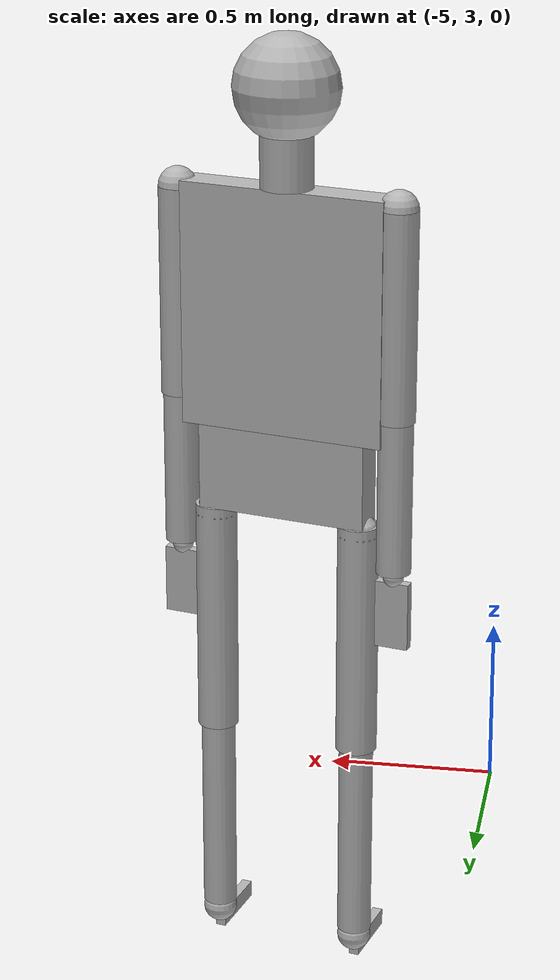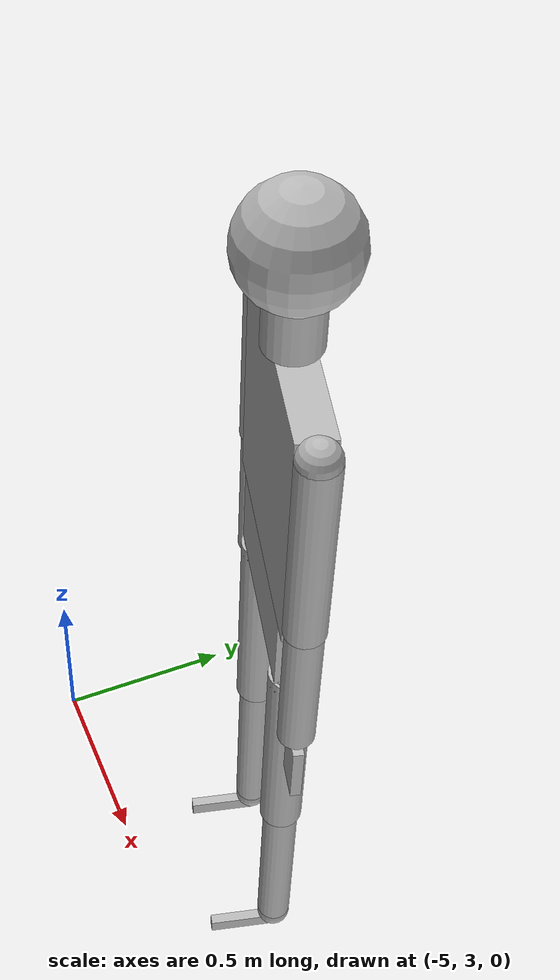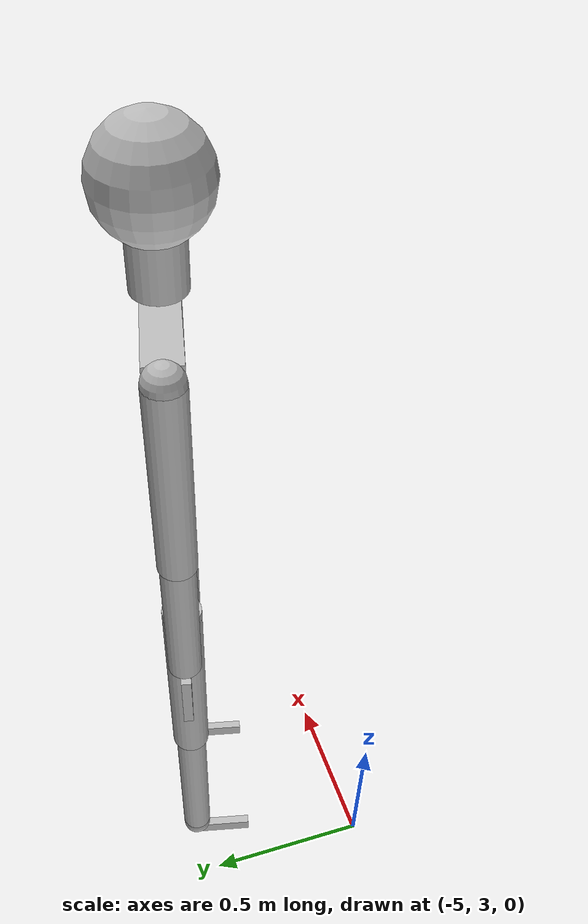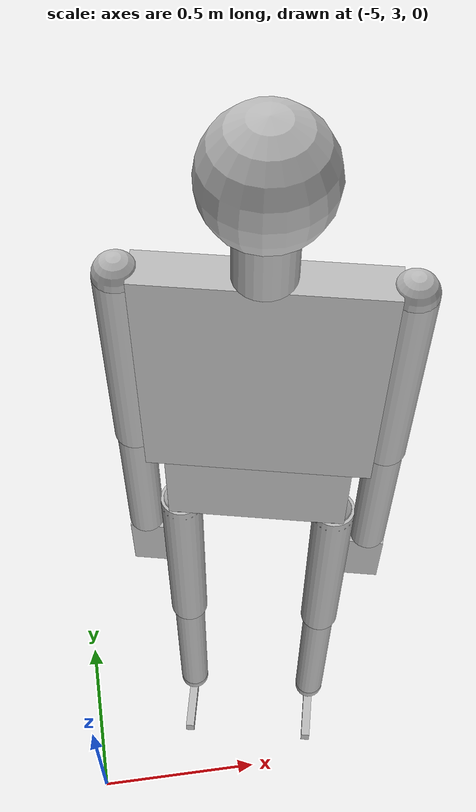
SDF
<sdf version="1.7">
 <world name="world_demo">
  <model name="ground_plane">
   <static>1</static>
   <link name="link">
    <collision name="collision">
     <geometry><plane><normal>0 0 1</normal><size>1 1</size></plane></geometry>
    </collision>
    <inertial>
     <mass>1</mass>
     <inertia><ixx>1</ixx><ixy>0</ixy><ixz>0</ixz><iyy>1</iyy><iyz>0</iyz><izz>1</izz></inertia>
    </inertial>
   </link>
  </model>
  <model name="ragdoll_0">
   <pose>-4.43933 3.44481 1.00722 0.00845 -0.002466 -1.79985</pose>
   <link name="hip">
    <inertial>
     <inertia><ixx>0.1</ixx><ixy>0</ixy><ixz>0</ixz><iyy>0.1</iyy><iyz>0</iyz><izz>0.1</izz></inertia>
     <mass>10</mass>
    </inertial>
    <collision name="hip_geom">
     <pose>0 0 0.125 0 -0 0</pose>
     <geometry><box><size>0.1 0.5 0.25</size></box></geometry>
     <surface>
      <friction><ode><mu>-1</mu><mu2>-1</mu2><fdir1>0 0 0</fdir1><slip1>0</slip1><slip2>0</slip2></ode></friction>
      <bounce><restitution_coefficient>0</restitution_coefficient><threshold>100000</threshold></bounce>
      <contact>
       <ode>
        <soft_cfm>0</soft_cfm>
        <soft_erp>0.2</soft_erp>
        <kp>1e+12</kp>
        <kd>1</kd>
        <max_vel>0</max_vel>
        <min_depth>0.001</min_depth>
       </ode>
      </contact>
     </surface>
    </collision>
    <visual name="hip_geom_visual">
     <pose>0 0 0.125 0 -0 0</pose>
     <geometry><box><size>0.1 0.5 0.25</size></box></geometry>
    </visual>
    <gravity>0</gravity>
   </link>
   <link name="l_thigh_pan">
    <pose>0 0.22 0 0 -0 0</pose>
    <inertial>
     <inertia><ixx>0.01</ixx><ixy>0</ixy><ixz>0</ixz><iyy>0.01</iyy><iyz>0</iyz><izz>0.01</izz></inertia>
     <mass>1</mass>
    </inertial>
    <collision name="l_thigh_pan_geom">
     <pose>0 0 -0.03 0 -0 0</pose>
     <geometry><sphere><radius>0.06</radius></sphere></geometry>
     <surface>
      <friction><ode><mu>-1</mu><mu2>-1</mu2><fdir1>0 0 0</fdir1><slip1>0</slip1><slip2>0</slip2></ode></friction>
      <bounce><restitution_coefficient>0</restitution_coefficient><threshold>100000</threshold></bounce>
      <contact>
       <ode>
        <soft_cfm>0</soft_cfm>
        <soft_erp>0.2</soft_erp>
        <kp>1e+12</kp>
        <kd>1</kd>
        <max_vel>0</max_vel>
        <min_depth>0.001</min_depth>
       </ode>
      </contact>
     </surface>
    </collision>
    <visual name="l_thigh_pan_geom_visual">
     <pose>0 0 -0.03 0 -0 0</pose>
     <geometry><sphere><radius>0.06</radius></sphere></geometry>
    </visual>
    <gravity>0</gravity>
   </link>
   <link name="l_thigh_lift">
    <pose>0 0.22 0 0 -0 0</pose>
    <inertial>
     <inertia><ixx>0.05</ixx><ixy>0</ixy><ixz>0</ixz><iyy>0.05</iyy><iyz>0</iyz><izz>0.05</izz></inertia>
     <mass>5</mass>
    </inertial>
    <collision name="l_thigh_lift_geom">
     <pose>0 0 -0.35 0 -0 0</pose>
     <geometry><cylinder><radius>0.06</radius><length>0.7</length></cylinder></geometry>
     <surface>
      <friction><ode><mu>-1</mu><mu2>-1</mu2><fdir1>0 0 0</fdir1><slip1>0</slip1><slip2>0</slip2></ode></friction>
      <bounce><restitution_coefficient>0</restitution_coefficient><threshold>100000</threshold></bounce>
      <contact>
       <ode>
        <soft_cfm>0</soft_cfm>
        <soft_erp>0.2</soft_erp>
        <kp>1e+12</kp>
        <kd>1</kd>
        <max_vel>0</max_vel>
        <min_depth>0.001</min_depth>
       </ode>
      </contact>
     </surface>
    </collision>
    <visual name="l_thigh_lift_geom_visual">
     <pose>0 0 -0.35 0 -0 0</pose>
     <geometry><cylinder><radius>0.06</radius><length>0.7</length></cylinder></geometry>
    </visual>
    <gravity>0</gravity>
   </link>
   <link name="l_calf">
    <pose>0 0.22 -0.7 0 -0 0</pose>
    <inertial>
     <inertia><ixx>0.02</ixx><ixy>0</ixy><ixz>0</ixz><iyy>0.02</iyy><iyz>0</iyz><izz>0.02</izz></inertia>
     <mass>2</mass>
    </inertial>
    <collision name="l_calf_geom">
     <pose>0 0 -0.3 0 -0 0</pose>
     <geometry><cylinder><radius>0.05</radius><length>0.6</length></cylinder></geometry>
     <surface>
      <friction><ode><mu>-1</mu><mu2>-1</mu2><fdir1>0 0 0</fdir1><slip1>0</slip1><slip2>0</slip2></ode></friction>
      <bounce><restitution_coefficient>0</restitution_coefficient><threshold>100000</threshold></bounce>
      <contact>
       <ode>
        <soft_cfm>0</soft_cfm>
        <soft_erp>0.2</soft_erp>
        <kp>1e+12</kp>
        <kd>1</kd>
        <max_vel>0</max_vel>
        <min_depth>0.001</min_depth>
       </ode>
      </contact>
     </surface>
    </collision>
    <visual name="l_calf_geom_visual">
     <pose>0 0 -0.3 0 -0 0</pose>
     <geometry><cylinder><radius>0.05</radius><length>0.6</length></cylinder></geometry>
    </visual>
    <gravity>0</gravity>
   </link>
   <link name="l_ankle">
    <pose>0 0.22 -1.325 0 -0 0</pose>
    <inertial>
     <inertia><ixx>0.01</ixx><ixy>0</ixy><ixz>0</ixz><iyy>0.01</iyy><iyz>0</iyz><izz>0.01</izz></inertia>
     <mass>1</mass>
    </inertial>
    <collision name="l_ankle_geom">
     <geometry><sphere><radius>0.05</radius></sphere></geometry>
     <surface>
      <friction><ode><mu>-1</mu><mu2>-1</mu2><fdir1>0 0 0</fdir1><slip1>0</slip1><slip2>0</slip2></ode></friction>
      <bounce><restitution_coefficient>0</restitution_coefficient><threshold>100000</threshold></bounce>
      <contact>
       <ode>
        <soft_cfm>0</soft_cfm>
        <soft_erp>0.2</soft_erp>
        <kp>1e+12</kp>
        <kd>1</kd>
        <max_vel>0</max_vel>
        <min_depth>0.001</min_depth>
       </ode>
      </contact>
     </surface>
    </collision>
    <visual name="l_ankle_geom_visual"><geometry><sphere><radius>0.05</radius></sphere></geometry></visual>
    <gravity>0</gravity>
   </link>
   <link name="l_foot">
    <pose>0 0.22 -1.35 0 -0 0</pose>
    <inertial>
     <pose>0.1 0 0 0 -0 0</pose>
     <inertia><ixx>0.01</ixx><ixy>0</ixy><ixz>0</ixz><iyy>0.01</iyy><iyz>0</iyz><izz>0.01</izz></inertia>
     <mass>1</mass>
    </inertial>
    <collision name="l_foot_geom">
     <pose>0.1 0 -0.025 0 -0 0</pose>
     <geometry><box><size>0.2 0.03 0.05</size></box></geometry>
     <surface>
      <friction><ode><mu>-1</mu><mu2>-1</mu2><fdir1>0 0 0</fdir1><slip1>0</slip1><slip2>0</slip2></ode></friction>
      <bounce><restitution_coefficient>0</restitution_coefficient><threshold>100000</threshold></bounce>
      <contact>
       <ode>
        <soft_cfm>0</soft_cfm>
        <soft_erp>0.2</soft_erp>
        <kp>1e+12</kp>
        <kd>1</kd>
        <max_vel>0</max_vel>
        <min_depth>0.001</min_depth>
       </ode>
      </contact>
     </surface>
    </collision>
    <visual name="l_foot_geom_visual">
     <pose>0.1 0 -0.025 0 -0 0</pose>
     <geometry><box><size>0.2 0.03 0.05</size></box></geometry>
    </visual>
   </link>
   <link name="r_thigh_pan">
    <pose>0 -0.22 0 0 -0 0</pose>
    <inertial>
     <inertia><ixx>0.01</ixx><ixy>0</ixy><ixz>0</ixz><iyy>0.01</iyy><iyz>0</iyz><izz>0.01</izz></inertia>
     <mass>1</mass>
    </inertial>
    <collision name="r_thigh_pan_geom">
     <pose>0 0 -0.03 0 -0 0</pose>
     <geometry><sphere><radius>0.06</radius></sphere></geometry>
     <surface>
      <friction><ode><mu>-1</mu><mu2>-1</mu2><fdir1>0 0 0</fdir1><slip1>0</slip1><slip2>0</slip2></ode></friction>
      <bounce><restitution_coefficient>0</restitution_coefficient><threshold>100000</threshold></bounce>
      <contact>
       <ode>
        <soft_cfm>0</soft_cfm>
        <soft_erp>0.2</soft_erp>
        <kp>1e+12</kp>
        <kd>1</kd>
        <max_vel>0</max_vel>
        <min_depth>0.001</min_depth>
       </ode>
      </contact>
     </surface>
    </collision>
    <visual name="r_thigh_pan_geom_visual">
     <pose>0 0 -0.03 0 -0 0</pose>
     <geometry><sphere><radius>0.06</radius></sphere></geometry>
    </visual>
    <gravity>0</gravity>
   </link>
   <link name="r_thigh_lift">
    <pose>0 -0.22 0 0 -0 0</pose>
    <inertial>
     <inertia><ixx>0.05</ixx><ixy>0</ixy><ixz>0</ixz><iyy>0.05</iyy><iyz>0</iyz><izz>0.05</izz></inertia>
     <mass>5</mass>
    </inertial>
    <collision name="r_thigh_lift_geom">
     <pose>0 0 -0.35 0 -0 0</pose>
     <geometry><cylinder><radius>0.06</radius><length>0.7</length></cylinder></geometry>
     <surface>
      <friction><ode><mu>-1</mu><mu2>-1</mu2><fdir1>0 0 0</fdir1><slip1>0</slip1><slip2>0</slip2></ode></friction>
      <bounce><restitution_coefficient>0</restitution_coefficient><threshold>100000</threshold></bounce>
      <contact>
       <ode>
        <soft_cfm>0</soft_cfm>
        <soft_erp>0.2</soft_erp>
        <kp>1e+12</kp>
        <kd>1</kd>
        <max_vel>0</max_vel>
        <min_depth>0.001</min_depth>
       </ode>
      </contact>
     </surface>
    </collision>
    <visual name="r_thigh_lift_geom_visual">
     <pose>0 0 -0.35 0 -0 0</pose>
     <geometry><cylinder><radius>0.06</radius><length>0.7</length></cylinder></geometry>
    </visual>
    <gravity>0</gravity>
   </link>
   <link name="r_calf">
    <pose>0 -0.22 -0.7 0 -0 0</pose>
    <inertial>
     <inertia><ixx>0.02</ixx><ixy>0</ixy><ixz>0</ixz><iyy>0.02</iyy><iyz>0</iyz><izz>0.02</izz></inertia>
     <mass>2</mass>
    </inertial>
    <collision name="r_calf_geom">
     <pose>0 0 -0.3 0 -0 0</pose>
     <geometry><cylinder><radius>0.05</radius><length>0.6</length></cylinder></geometry>
     <surface>
      <friction><ode><mu>-1</mu><mu2>-1</mu2><fdir1>0 0 0</fdir1><slip1>0</slip1><slip2>0</slip2></ode></friction>
      <bounce><restitution_coefficient>0</restitution_coefficient><threshold>100000</threshold></bounce>
      <contact>
       <ode>
        <soft_cfm>0</soft_cfm>
        <soft_erp>0.2</soft_erp>
        <kp>1e+12</kp>
        <kd>1</kd>
        <max_vel>0</max_vel>
        <min_depth>0.001</min_depth>
       </ode>
      </contact>
     </surface>
    </collision>
    <visual name="r_calf_geom_visual">
     <pose>0 0 -0.3 0 -0 0</pose>
     <geometry><cylinder><radius>0.05</radius><length>0.6</length></cylinder></geometry>
    </visual>
    <gravity>0</gravity>
   </link>
   <link name="r_ankle">
    <pose>0 -0.22 -1.325 0 -0 0</pose>
    <inertial>
     <inertia><ixx>0.01</ixx><ixy>0</ixy><ixz>0</ixz><iyy>0.01</iyy><iyz>0</iyz><izz>0.01</izz></inertia>
     <mass>1</mass>
    </inertial>
    <collision name="r_ankle_geom">
     <geometry><sphere><radius>0.05</radius></sphere></geometry>
     <surface>
      <friction><ode><mu>-1</mu><mu2>-1</mu2><fdir1>0 0 0</fdir1><slip1>0</slip1><slip2>0</slip2></ode></friction>
      <bounce><restitution_coefficient>0</restitution_coefficient><threshold>100000</threshold></bounce>
      <contact>
       <ode>
        <soft_cfm>0</soft_cfm>
        <soft_erp>0.2</soft_erp>
        <kp>1e+12</kp>
        <kd>1</kd>
        <max_vel>0</max_vel>
        <min_depth>0.001</min_depth>
       </ode>
      </contact>
     </surface>
    </collision>
    <visual name="r_ankle_geom_visual"><geometry><sphere><radius>0.05</radius></sphere></geometry></visual>
    <gravity>0</gravity>
   </link>
   <link name="r_foot">
    <pose>0 -0.22 -1.35 0 -0 0</pose>
    <inertial>
     <pose>0.1 0 0 0 -0 0</pose>
     <inertia><ixx>0.01</ixx><ixy>0</ixy><ixz>0</ixz><iyy>0.01</iyy><iyz>0</iyz><izz>0.01</izz></inertia>
     <mass>1</mass>
    </inertial>
    <collision name="r_foot_geom">
     <pose>0.1 0 -0.025 0 -0 0</pose>
     <geometry><box><size>0.2 0.03 0.05</size></box></geometry>
     <surface>
      <friction><ode><mu>-1</mu><mu2>-1</mu2><fdir1>0 0 0</fdir1><slip1>0</slip1><slip2>0</slip2></ode></friction>
      <bounce><restitution_coefficient>0</restitution_coefficient><threshold>100000</threshold></bounce>
      <contact>
       <ode>
        <soft_cfm>0</soft_cfm>
        <soft_erp>0.2</soft_erp>
        <kp>1e+12</kp>
        <kd>1</kd>
        <max_vel>0</max_vel>
        <min_depth>0.001</min_depth>
       </ode>
      </contact>
     </surface>
    </collision>
    <visual name="r_foot_geom_visual">
     <pose>0.1 0 -0.025 0 -0 0</pose>
     <geometry><box><size>0.2 0.03 0.05</size></box></geometry>
    </visual>
   </link>
   <link name="torso">
    <pose>0 0 0.25 0 -0 0</pose>
    <inertial>
     <inertia><ixx>0.3</ixx><ixy>0</ixy><ixz>0</ixz><iyy>0.3</iyy><iyz>0</iyz><izz>0.3</izz></inertia>
     <mass>30</mass>
    </inertial>
    <collision name="torso_geom">
     <pose>0 0 0.35 0 -0 0</pose>
     <geometry><box><size>0.1 0.6 0.7</size></box></geometry>
     <surface>
      <friction><ode><mu>-1</mu><mu2>-1</mu2><fdir1>0 0 0</fdir1><slip1>0</slip1><slip2>0</slip2></ode></friction>
      <bounce><restitution_coefficient>0</restitution_coefficient><threshold>100000</threshold></bounce>
      <contact>
       <ode>
        <soft_cfm>0</soft_cfm>
        <soft_erp>0.2</soft_erp>
        <kp>1e+12</kp>
        <kd>1</kd>
        <max_vel>0</max_vel>
        <min_depth>0.001</min_depth>
       </ode>
      </contact>
     </surface>
    </collision>
    <visual name="torso_geom_visual">
     <pose>0 0 0.35 0 -0 0</pose>
     <geometry><box><size>0.1 0.6 0.7</size></box></geometry>
    </visual>
    <gravity>0</gravity>
   </link>
   <link name="l_shoulder">
    <pose>0 0.3275 0.9225 0 -0 0</pose>
    <inertial>
     <inertia><ixx>0.01</ixx><ixy>0</ixy><ixz>0</ixz><iyy>0.01</iyy><iyz>0</iyz><izz>0.01</izz></inertia>
     <mass>1</mass>
    </inertial>
    <collision name="l_shoulder_geom">
     <geometry><sphere><radius>0.055</radius></sphere></geometry>
     <surface>
      <friction><ode><mu>-1</mu><mu2>-1</mu2><fdir1>0 0 0</fdir1><slip1>0</slip1><slip2>0</slip2></ode></friction>
      <bounce><restitution_coefficient>0</restitution_coefficient><threshold>100000</threshold></bounce>
      <contact>
       <ode>
        <soft_cfm>0</soft_cfm>
        <soft_erp>0.2</soft_erp>
        <kp>1e+12</kp>
        <kd>1</kd>
        <max_vel>0</max_vel>
        <min_depth>0.001</min_depth>
       </ode>
      </contact>
     </surface>
    </collision>
    <visual name="l_shoulder_geom_visual"><geometry><sphere><radius>0.055</radius></sphere></geometry></visual>
    <gravity>0</gravity>
   </link>
   <link name="l_upper_arm">
    <pose>0 0.3275 0.9225 0 -0 0</pose>
    <inertial>
     <inertia><ixx>0.02</ixx><ixy>0</ixy><ixz>0</ixz><iyy>0.02</iyy><iyz>0</iyz><izz>0.02</izz></inertia>
     <mass>2</mass>
    </inertial>
    <collision name="l_upper_arm_geom">
     <pose>0 0 -0.3 0 -0 0</pose>
     <geometry><cylinder><radius>0.055</radius><length>0.6</length></cylinder></geometry>
     <surface>
      <friction><ode><mu>-1</mu><mu2>-1</mu2><fdir1>0 0 0</fdir1><slip1>0</slip1><slip2>0</slip2></ode></friction>
      <bounce><restitution_coefficient>0</restitution_coefficient><threshold>100000</threshold></bounce>
      <contact>
       <ode>
        <soft_cfm>0</soft_cfm>
        <soft_erp>0.2</soft_erp>
        <kp>1e+12</kp>
        <kd>1</kd>
        <max_vel>0</max_vel>
        <min_depth>0.001</min_depth>
       </ode>
      </contact>
     </surface>
    </collision>
    <visual name="l_upper_arm_geom_visual">
     <pose>0 0 -0.3 0 -0 0</pose>
     <geometry><cylinder><radius>0.055</radius><length>0.6</length></cylinder></geometry>
    </visual>
    <gravity>0</gravity>
   </link>
   <link name="l_forearm">
    <pose>0 0.3275 0.3225 0 -0 0</pose>
    <inertial>
     <inertia><ixx>0.01</ixx><ixy>0</ixy><ixz>0</ixz><iyy>0.01</iyy><iyz>0</iyz><izz>0.01</izz></inertia>
     <mass>1</mass>
    </inertial>
    <collision name="l_forearm_geom">
     <pose>0 0 -0.225 0 -0 0</pose>
     <geometry><cylinder><radius>0.05</radius><length>0.45</length></cylinder></geometry>
     <surface>
      <friction><ode><mu>-1</mu><mu2>-1</mu2><fdir1>0 0 0</fdir1><slip1>0</slip1><slip2>0</slip2></ode></friction>
      <bounce><restitution_coefficient>0</restitution_coefficient><threshold>100000</threshold></bounce>
      <contact>
       <ode>
        <soft_cfm>0</soft_cfm>
        <soft_erp>0.2</soft_erp>
        <kp>1e+12</kp>
        <kd>1</kd>
        <max_vel>0</max_vel>
        <min_depth>0.001</min_depth>
       </ode>
      </contact>
     </surface>
    </collision>
    <visual name="l_forearm_geom_visual">
     <pose>0 0 -0.225 0 -0 0</pose>
     <geometry><cylinder><radius>0.05</radius><length>0.45</length></cylinder></geometry>
    </visual>
    <gravity>0</gravity>
   </link>
   <link name="l_wrist">
    <pose>0 0.3275 -0.1425 0 -0 0</pose>
    <inertial>
     <inertia><ixx>0.01</ixx><ixy>0</ixy><ixz>0</ixz><iyy>0.01</iyy><iyz>0</iyz><izz>0.01</izz></inertia>
     <mass>1</mass>
    </inertial>
    <collision name="l_wrist_geom">
     <geometry><sphere><radius>0.03</radius></sphere></geometry>
     <surface>
      <friction><ode><mu>-1</mu><mu2>-1</mu2><fdir1>0 0 0</fdir1><slip1>0</slip1><slip2>0</slip2></ode></friction>
      <bounce><restitution_coefficient>0</restitution_coefficient><threshold>100000</threshold></bounce>
      <contact>
       <ode>
        <soft_cfm>0</soft_cfm>
        <soft_erp>0.2</soft_erp>
        <kp>1e+12</kp>
        <kd>1</kd>
        <max_vel>0</max_vel>
        <min_depth>0.001</min_depth>
       </ode>
      </contact>
     </surface>
    </collision>
    <visual name="l_wrist_geom_visual"><geometry><sphere><radius>0.03</radius></sphere></geometry></visual>
    <gravity>0</gravity>
   </link>
   <link name="l_hand">
    <pose>0 0.3275 -0.1575 0 -0 0</pose>
    <inertial>
     <inertia><ixx>0.01</ixx><ixy>0</ixy><ixz>0</ixz><iyy>0.01</iyy><iyz>0</iyz><izz>0.01</izz></inertia>
     <mass>1</mass>
    </inertial>
    <collision name="l_hand_geom">
     <pose>0 0 -0.1 0 -0 0</pose>
     <geometry><box><size>0.03 0.1 0.2</size></box></geometry>
     <surface>
      <friction><ode><mu>-1</mu><mu2>-1</mu2><fdir1>0 0 0</fdir1><slip1>0</slip1><slip2>0</slip2></ode></friction>
      <bounce><restitution_coefficient>0</restitution_coefficient><threshold>100000</threshold></bounce>
      <contact>
       <ode>
        <soft_cfm>0</soft_cfm>
        <soft_erp>0.2</soft_erp>
        <kp>1e+12</kp>
        <kd>1</kd>
        <max_vel>0</max_vel>
        <min_depth>0.001</min_depth>
       </ode>
      </contact>
     </surface>
    </collision>
    <visual name="l_hand_geom_visual">
     <pose>0 0 -0.1 0 -0 0</pose>
     <geometry><box><size>0.03 0.1 0.2</size></box></geometry>
    </visual>
    <gravity>0</gravity>
   </link>
   <link name="neck">
    <pose>0 0 0.95 0 -0 0</pose>
    <inertial>
     <inertia><ixx>0.01</ixx><ixy>0</ixy><ixz>0</ixz><iyy>0.01</iyy><iyz>0</iyz><izz>0.01</izz></inertia>
     <mass>1</mass>
    </inertial>
    <collision name="neck_geom">
     <pose>0 0 0.1 0 -0 0</pose>
     <geometry><cylinder><radius>0.075</radius><length>0.2</length></cylinder></geometry>
     <surface>
      <friction><ode><mu>-1</mu><mu2>-1</mu2><fdir1>0 0 0</fdir1><slip1>0</slip1><slip2>0</slip2></ode></friction>
      <bounce><restitution_coefficient>0</restitution_coefficient><threshold>100000</threshold></bounce>
      <contact>
       <ode>
        <soft_cfm>0</soft_cfm>
        <soft_erp>0.2</soft_erp>
        <kp>1e+12</kp>
        <kd>1</kd>
        <max_vel>0</max_vel>
        <min_depth>0.001</min_depth>
       </ode>
      </contact>
     </surface>
    </collision>
    <visual name="neck_geom_visual">
     <pose>0 0 0.1 0 -0 0</pose>
     <geometry><cylinder><radius>0.075</radius><length>0.2</length></cylinder></geometry>
    </visual>
    <gravity>0</gravity>
   </link>
   <link name="head">
    <pose>0 0 1.225 0 -0 0</pose>
    <inertial>
     <inertia><ixx>0.1</ixx><ixy>0</ixy><ixz>0</ixz><iyy>0.1</iyy><iyz>0</iyz><izz>0.1</izz></inertia>
     <mass>10</mass>
    </inertial>
    <collision name="head_geom">
     <geometry><sphere><radius>0.15</radius></sphere></geometry>
     <surface>
      <friction><ode><mu>-1</mu><mu2>-1</mu2><fdir1>0 0 0</fdir1><slip1>0</slip1><slip2>0</slip2></ode></friction>
      <bounce><restitution_coefficient>0</restitution_coefficient><threshold>100000</threshold></bounce>
      <contact>
       <ode>
        <soft_cfm>0</soft_cfm>
        <soft_erp>0.2</soft_erp>
        <kp>1e+12</kp>
        <kd>1</kd>
        <max_vel>0</max_vel>
        <min_depth>0.001</min_depth>
       </ode>
      </contact>
     </surface>
    </collision>
    <visual name="head_geom_visual"><geometry><sphere><radius>0.15</radius></sphere></geometry></visual>
    <gravity>0</gravity>
   </link>
   <link name="r_shoulder">
    <pose>0 -0.3275 0.9225 0 -0 0</pose>
    <inertial>
     <inertia><ixx>0.01</ixx><ixy>0</ixy><ixz>0</ixz><iyy>0.01</iyy><iyz>0</iyz><izz>0.01</izz></inertia>
     <mass>1</mass>
    </inertial>
    <collision name="r_shoulder_geom">
     <geometry><sphere><radius>0.055</radius></sphere></geometry>
     <surface>
      <friction><ode><mu>-1</mu><mu2>-1</mu2><fdir1>0 0 0</fdir1><slip1>0</slip1><slip2>0</slip2></ode></friction>
      <bounce><restitution_coefficient>0</restitution_coefficient><threshold>100000</threshold></bounce>
      <contact>
       <ode>
        <soft_cfm>0</soft_cfm>
        <soft_erp>0.2</soft_erp>
        <kp>1e+12</kp>
        <kd>1</kd>
        <max_vel>0</max_vel>
        <min_depth>0.001</min_depth>
       </ode>
      </contact>
     </surface>
    </collision>
    <visual name="r_shoulder_geom_visual"><geometry><sphere><radius>0.055</radius></sphere></geometry></visual>
    <gravity>0</gravity>
   </link>
   <link name="r_upper_arm">
    <pose>0 -0.3275 0.9225 0 -0 0</pose>
    <inertial>
     <inertia><ixx>0.02</ixx><ixy>0</ixy><ixz>0</ixz><iyy>0.02</iyy><iyz>0</iyz><izz>0.02</izz></inertia>
     <mass>2</mass>
    </inertial>
    <collision name="r_upper_arm_geom">
     <pose>0 0 -0.3 0 -0 0</pose>
     <geometry><cylinder><radius>0.055</radius><length>0.6</length></cylinder></geometry>
     <surface>
      <friction><ode><mu>-1</mu><mu2>-1</mu2><fdir1>0 0 0</fdir1><slip1>0</slip1><slip2>0</slip2></ode></friction>
      <bounce><restitution_coefficient>0</restitution_coefficient><threshold>100000</threshold></bounce>
      <contact>
       <ode>
        <soft_cfm>0</soft_cfm>
        <soft_erp>0.2</soft_erp>
        <kp>1e+12</kp>
        <kd>1</kd>
        <max_vel>0</max_vel>
        <min_depth>0.001</min_depth>
       </ode>
      </contact>
     </surface>
    </collision>
    <visual name="r_upper_arm_geom_visual">
     <pose>0 0 -0.3 0 -0 0</pose>
     <geometry><cylinder><radius>0.055</radius><length>0.6</length></cylinder></geometry>
    </visual>
    <gravity>0</gravity>
   </link>
   <link name="r_forearm">
    <pose>0 -0.3275 0.3225 0 -0 0</pose>
    <inertial>
     <inertia><ixx>0.01</ixx><ixy>0</ixy><ixz>0</ixz><iyy>0.01</iyy><iyz>0</iyz><izz>0.01</izz></inertia>
     <mass>1</mass>
    </inertial>
    <collision name="r_forearm_geom">
     <pose>0 0 -0.225 0 -0 0</pose>
     <geometry><cylinder><radius>0.05</radius><length>0.45</length></cylinder></geometry>
     <surface>
      <friction><ode><mu>-1</mu><mu2>-1</mu2><fdir1>0 0 0</fdir1><slip1>0</slip1><slip2>0</slip2></ode></friction>
      <bounce><restitution_coefficient>0</restitution_coefficient><threshold>100000</threshold></bounce>
      <contact>
       <ode>
        <soft_cfm>0</soft_cfm>
        <soft_erp>0.2</soft_erp>
        <kp>1e+12</kp>
        <kd>1</kd>
        <max_vel>0</max_vel>
        <min_depth>0.001</min_depth>
       </ode>
      </contact>
     </surface>
    </collision>
    <visual name="r_forearm_geom_visual">
     <pose>0 0 -0.225 0 -0 0</pose>
     <geometry><cylinder><radius>0.05</radius><length>0.45</length></cylinder></geometry>
    </visual>
    <gravity>0</gravity>
   </link>
   <link name="r_wrist">
    <pose>0 -0.3275 -0.1425 0 -0 0</pose>
    <inertial>
     <inertia><ixx>0.01</ixx><ixy>0</ixy><ixz>0</ixz><iyy>0.01</iyy><iyz>0</iyz><izz>0.01</izz></inertia>
     <mass>1</mass>
    </inertial>
    <collision name="r_wrist_geom">
     <geometry><sphere><radius>0.03</radius></sphere></geometry>
     <surface>
      <friction><ode><mu>-1</mu><mu2>-1</mu2><fdir1>0 0 0</fdir1><slip1>0</slip1><slip2>0</slip2></ode></friction>
      <bounce><restitution_coefficient>0</restitution_coefficient><threshold>100000</threshold></bounce>
      <contact>
       <ode>
        <soft_cfm>0</soft_cfm>
        <soft_erp>0.2</soft_erp>
        <kp>1e+12</kp>
        <kd>1</kd>
        <max_vel>0</max_vel>
        <min_depth>0.001</min_depth>
       </ode>
      </contact>
     </surface>
    </collision>
    <visual name="r_wrist_geom_visual"><geometry><sphere><radius>0.03</radius></sphere></geometry></visual>
    <gravity>0</gravity>
   </link>
   <link name="r_hand">
    <pose>0 -0.3275 -0.1575 0 -0 0</pose>
    <inertial>
     <inertia><ixx>0.01</ixx><ixy>0</ixy><ixz>0</ixz><iyy>0.01</iyy><iyz>0</iyz><izz>0.01</izz></inertia>
     <mass>1</mass>
    </inertial>
    <collision name="r_hand_geom">
     <pose>0 0 -0.1 0 -0 0</pose>
     <geometry><box><size>0.03 0.1 0.2</size></box></geometry>
     <surface>
      <friction><ode><mu>-1</mu><mu2>-1</mu2><fdir1>0 0 0</fdir1><slip1>0</slip1><slip2>0</slip2></ode></friction>
      <bounce><restitution_coefficient>0</restitution_coefficient><threshold>100000</threshold></bounce>
      <contact>
       <ode>
        <soft_cfm>0</soft_cfm>
        <soft_erp>0.2</soft_erp>
        <kp>1e+12</kp>
        <kd>1</kd>
        <max_vel>0</max_vel>
        <min_depth>0.001</min_depth>
       </ode>
      </contact>
     </surface>
    </collision>
    <visual name="r_hand_geom_visual">
     <pose>0 0 -0.1 0 -0 0</pose>
     <geometry><box><size>0.03 0.1 0.2</size></box></geometry>
    </visual>
    <gravity>0</gravity>
   </link>
   <joint name="l_thigh_pan_joint" type="revolute">
    <parent>hip</parent>
    <child>l_thigh_pan</child>
    <axis>
     <dynamics>
      <damping>0</damping>
      <friction>0</friction>
      <spring_reference>0</spring_reference>
      <spring_stiffness>0</spring_stiffness>
     </dynamics>
     <limit><lower>-1.5708</lower><upper>1.5708</upper><effort>0</effort><velocity>0</velocity></limit>
     <xyz expressed_in="__model__">0 0 1</xyz>
    </axis>
   </joint>
   <joint name="l_thigh_lift_joint" type="revolute">
    <parent>l_thigh_pan</parent>
    <child>l_thigh_lift</child>
    <axis>
     <dynamics>
      <damping>0</damping>
      <friction>0</friction>
      <spring_reference>0</spring_reference>
      <spring_stiffness>0</spring_stiffness>
     </dynamics>
     <limit><lower>-1.5708</lower><upper>1.5708</upper><effort>0</effort><velocity>0</velocity></limit>
     <xyz expressed_in="__model__">0 1 0</xyz>
    </axis>
   </joint>
   <joint name="l_calf_joint" type="revolute">
    <parent>l_thigh_lift</parent>
    <child>l_calf</child>
    <axis>
     <dynamics>
      <damping>0</damping>
      <friction>0</friction>
      <spring_reference>0</spring_reference>
      <spring_stiffness>0</spring_stiffness>
     </dynamics>
     <limit><lower>-1.5708</lower><upper>1.5708</upper><effort>0</effort><velocity>0</velocity></limit>
     <xyz expressed_in="__model__">0 1 0</xyz>
    </axis>
   </joint>
   <joint name="l_ankle_joint" type="revolute">
    <parent>l_calf</parent>
    <child>l_ankle</child>
    <axis>
     <dynamics>
      <damping>0</damping>
      <friction>0</friction>
      <spring_reference>0</spring_reference>
      <spring_stiffness>0</spring_stiffness>
     </dynamics>
     <limit><lower>-1.5708</lower><upper>1.5708</upper><effort>0</effort><velocity>0</velocity></limit>
     <xyz expressed_in="__model__">0 1 0</xyz>
    </axis>
   </joint>
   <joint name="l_foot_joint" type="revolute">
    <parent>l_ankle</parent>
    <child>l_foot</child>
    <axis>
     <dynamics>
      <damping>0</damping>
      <friction>0</friction>
      <spring_reference>0</spring_reference>
      <spring_stiffness>0</spring_stiffness>
     </dynamics>
     <limit><lower>-1.5708</lower><upper>1.5708</upper><effort>0</effort><velocity>0</velocity></limit>
     <xyz expressed_in="__model__">1 0 0</xyz>
    </axis>
   </joint>
   <joint name="r_thigh_pan_joint" type="revolute">
    <parent>hip</parent>
    <child>r_thigh_pan</child>
    <axis>
     <dynamics>
      <damping>0</damping>
      <friction>0</friction>
      <spring_reference>0</spring_reference>
      <spring_stiffness>0</spring_stiffness>
     </dynamics>
     <limit><lower>-1.5708</lower><upper>1.5708</upper><effort>0</effort><velocity>0</velocity></limit>
     <xyz expressed_in="__model__">0 0 1</xyz>
    </axis>
   </joint>
   <joint name="r_thigh_lift_joint" type="revolute">
    <parent>r_thigh_pan</parent>
    <child>r_thigh_lift</child>
    <axis>
     <dynamics>
      <damping>0</damping>
      <friction>0</friction>
      <spring_reference>0</spring_reference>
      <spring_stiffness>0</spring_stiffness>
     </dynamics>
     <limit><lower>-1.5708</lower><upper>1.5708</upper><effort>0</effort><velocity>0</velocity></limit>
     <xyz expressed_in="__model__">0 1 0</xyz>
    </axis>
   </joint>
   <joint name="r_calf_joint" type="revolute">
    <parent>r_thigh_lift</parent>
    <child>r_calf</child>
    <axis>
     <dynamics>
      <damping>0</damping>
      <friction>0</friction>
      <spring_reference>0</spring_reference>
      <spring_stiffness>0</spring_stiffness>
     </dynamics>
     <limit><lower>-1.5708</lower><upper>1.5708</upper><effort>0</effort><velocity>0</velocity></limit>
     <xyz expressed_in="__model__">0 1 0</xyz>
    </axis>
   </joint>
   <joint name="r_ankle_joint" type="revolute">
    <parent>r_calf</parent>
    <child>r_ankle</child>
    <axis>
     <dynamics>
      <damping>0</damping>
      <friction>0</friction>
      <spring_reference>0</spring_reference>
      <spring_stiffness>0</spring_stiffness>
     </dynamics>
     <limit><lower>-1.5708</lower><upper>1.5708</upper><effort>0</effort><velocity>0</velocity></limit>
     <xyz expressed_in="__model__">0 1 0</xyz>
    </axis>
   </joint>
   <joint name="r_foot_joint" type="revolute">
    <parent>r_ankle</parent>
    <child>r_foot</child>
    <axis>
     <dynamics>
      <damping>0</damping>
      <friction>0</friction>
      <spring_reference>0</spring_reference>
      <spring_stiffness>0</spring_stiffness>
     </dynamics>
     <limit><lower>-1.5708</lower><upper>1.5708</upper><effort>0</effort><velocity>0</velocity></limit>
     <xyz expressed_in="__model__">1 0 0</xyz>
    </axis>
   </joint>
   <joint name="torso_joint" type="revolute">
    <parent>hip</parent>
    <child>torso</child>
    <axis>
     <dynamics>
      <damping>0</damping>
      <friction>0</friction>
      <spring_reference>0</spring_reference>
      <spring_stiffness>0</spring_stiffness>
     </dynamics>
     <limit><lower>-1.5708</lower><upper>1.5708</upper><effort>0</effort><velocity>0</velocity></limit>
     <xyz expressed_in="__model__">0 1 0</xyz>
    </axis>
   </joint>
   <joint name="l_shoulder_joint" type="revolute">
    <parent>torso</parent>
    <child>l_shoulder</child>
    <axis>
     <dynamics>
      <damping>0</damping>
      <friction>0</friction>
      <spring_reference>0</spring_reference>
      <spring_stiffness>0</spring_stiffness>
     </dynamics>
     <limit><lower>-1.5708</lower><upper>1.5708</upper><effort>0</effort><velocity>0</velocity></limit>
     <xyz expressed_in="__model__">1 0 0</xyz>
    </axis>
   </joint>
   <joint name="l_upper_arm_joint" type="revolute">
    <parent>l_shoulder</parent>
    <child>l_upper_arm</child>
    <axis>
     <dynamics>
      <damping>0</damping>
      <friction>0</friction>
      <spring_reference>0</spring_reference>
      <spring_stiffness>0</spring_stiffness>
     </dynamics>
     <limit><lower>-1.5708</lower><upper>1.5708</upper><effort>0</effort><velocity>0</velocity></limit>
     <xyz expressed_in="__model__">0 1 0</xyz>
    </axis>
   </joint>
   <joint name="l_forearm_joint" type="revolute">
    <parent>l_upper_arm</parent>
    <child>l_forearm</child>
    <axis>
     <dynamics>
      <damping>0</damping>
      <friction>0</friction>
      <spring_reference>0</spring_reference>
      <spring_stiffness>0</spring_stiffness>
     </dynamics>
     <limit><lower>-1.5708</lower><upper>1.5708</upper><effort>0</effort><velocity>0</velocity></limit>
     <xyz expressed_in="__model__">0 1 0</xyz>
    </axis>
   </joint>
   <joint name="l_wrist_joint" type="revolute">
    <parent>l_forearm</parent>
    <child>l_wrist</child>
    <axis>
     <dynamics>
      <damping>0</damping>
      <friction>0</friction>
      <spring_reference>0</spring_reference>
      <spring_stiffness>0</spring_stiffness>
     </dynamics>
     <limit><lower>-1.5708</lower><upper>1.5708</upper><effort>0</effort><velocity>0</velocity></limit>
     <xyz expressed_in="__model__">0 1 0</xyz>
    </axis>
   </joint>
   <joint name="l_hand_joint" type="revolute">
    <parent>l_wrist</parent>
    <child>l_hand</child>
    <axis>
     <dynamics>
      <damping>0</damping>
      <friction>0</friction>
      <spring_reference>0</spring_reference>
      <spring_stiffness>0</spring_stiffness>
     </dynamics>
     <limit><lower>-1.5708</lower><upper>1.5708</upper><effort>0</effort><velocity>0</velocity></limit>
     <xyz expressed_in="__model__">0 1 0</xyz>
    </axis>
   </joint>
   <joint name="neck_joint" type="revolute">
    <parent>torso</parent>
    <child>neck</child>
    <axis>
     <dynamics>
      <damping>0</damping>
      <friction>0</friction>
      <spring_reference>0</spring_reference>
      <spring_stiffness>0</spring_stiffness>
     </dynamics>
     <limit><lower>-1.5708</lower><upper>1.5708</upper><effort>0</effort><velocity>0</velocity></limit>
     <xyz expressed_in="__model__">0 0 1</xyz>
    </axis>
   </joint>
   <joint name="head_joint" type="revolute">
    <parent>neck</parent>
    <child>head</child>
    <axis>
     <dynamics>
      <damping>0</damping>
      <friction>0</friction>
      <spring_reference>0</spring_reference>
      <spring_stiffness>0</spring_stiffness>
     </dynamics>
     <limit><lower>-1.5708</lower><upper>1.5708</upper><effort>0</effort><velocity>0</velocity></limit>
     <xyz expressed_in="__model__">0 1 0</xyz>
    </axis>
   </joint>
   <joint name="r_shoulder_joint" type="revolute">
    <parent>torso</parent>
    <child>r_shoulder</child>
    <axis>
     <dynamics>
      <damping>0</damping>
      <friction>0</friction>
      <spring_reference>0</spring_reference>
      <spring_stiffness>0</spring_stiffness>
     </dynamics>
     <limit><lower>-1.5708</lower><upper>1.5708</upper><effort>0</effort><velocity>0</velocity></limit>
     <xyz expressed_in="__model__">1 0 0</xyz>
    </axis>
   </joint>
   <joint name="r_upper_arm_joint" type="revolute">
    <parent>r_shoulder</parent>
    <child>r_upper_arm</child>
    <axis>
     <dynamics>
      <damping>0</damping>
      <friction>0</friction>
      <spring_reference>0</spring_reference>
      <spring_stiffness>0</spring_stiffness>
     </dynamics>
     <limit><lower>-1.5708</lower><upper>1.5708</upper><effort>0</effort><velocity>0</velocity></limit>
     <xyz expressed_in="__model__">0 1 0</xyz>
    </axis>
   </joint>
   <joint name="r_forearm_joint" type="revolute">
    <parent>r_upper_arm</parent>
    <child>r_forearm</child>
    <axis>
     <dynamics>
      <damping>0</damping>
      <friction>0</friction>
      <spring_reference>0</spring_reference>
      <spring_stiffness>0</spring_stiffness>
     </dynamics>
     <limit><lower>-1.5708</lower><upper>1.5708</upper><effort>0</effort><velocity>0</velocity></limit>
     <xyz expressed_in="__model__">0 1 0</xyz>
    </axis>
   </joint>
   <joint name="r_wrist_joint" type="revolute">
    <parent>r_forearm</parent>
    <child>r_wrist</child>
    <axis>
     <dynamics>
      <damping>0</damping>
      <friction>0</friction>
      <spring_reference>0</spring_reference>
      <spring_stiffness>0</spring_stiffness>
     </dynamics>
     <limit><lower>-1.5708</lower><upper>1.5708</upper><effort>0</effort><velocity>0</velocity></limit>
     <xyz expressed_in="__model__">0 1 0</xyz>
    </axis>
   </joint>
   <joint name="r_hand_joint" type="revolute">
    <parent>r_wrist</parent>
    <child>r_hand</child>
    <axis>
     <dynamics>
      <damping>0</damping>
      <friction>0</friction>
      <spring_reference>0</spring_reference>
      <spring_stiffness>0</spring_stiffness>
     </dynamics>
     <limit><lower>-1.5708</lower><upper>1.5708</upper><effort>0</effort><velocity>0</velocity></limit>
     <xyz expressed_in="__model__">0 1 0</xyz>
    </axis>
   </joint>
   <static>0</static>
  </model>
 </world>
</sdf>
